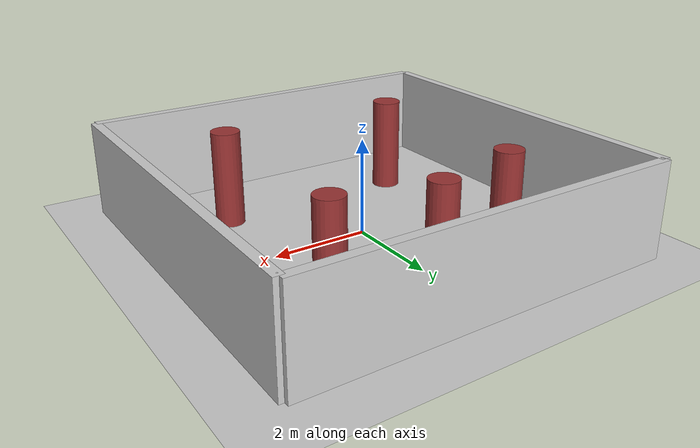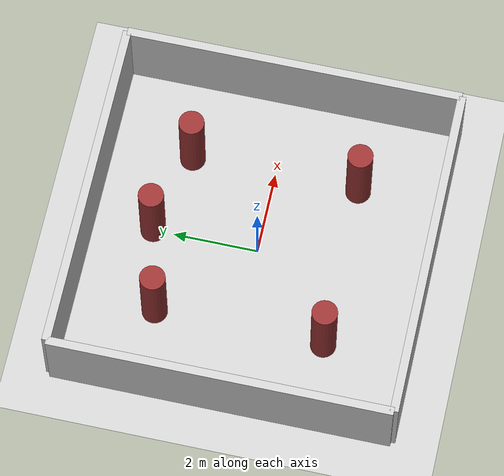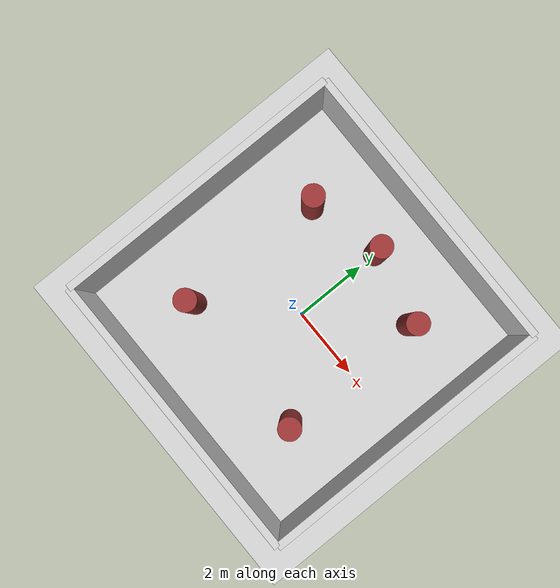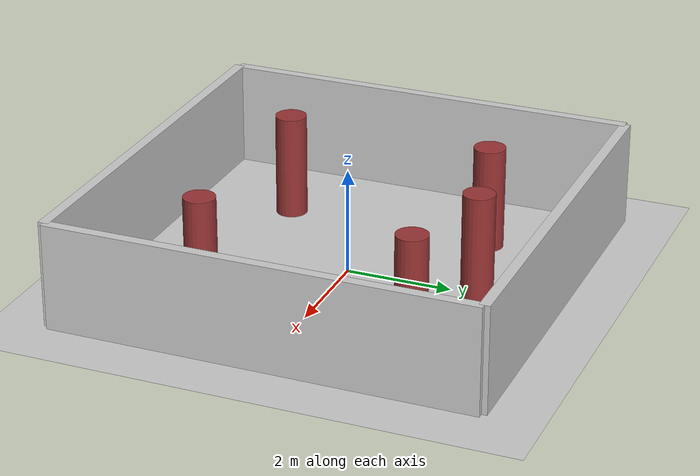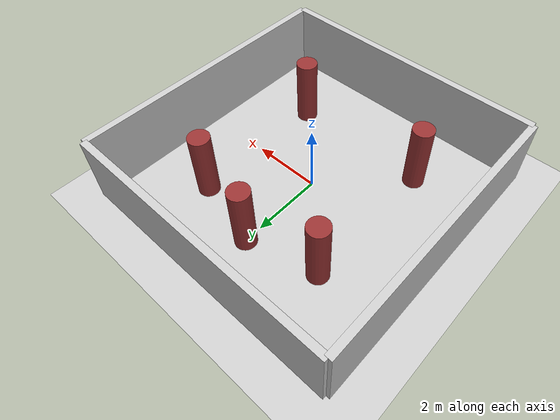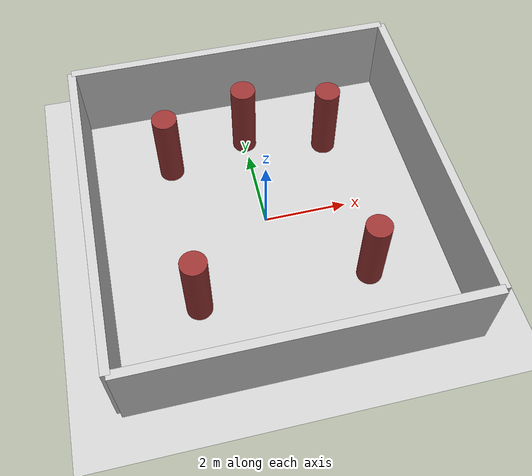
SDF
<?xml version="1.0" ?>
<sdf version="1.6">
  <world name="room_with_pillars">

    <include>
      <uri>model://sun</uri>
    </include>

    <include>
      <uri>model://ground_plane</uri>
    </include>

    <physics type="ode">
      <real_time_update_rate>1000.0</real_time_update_rate>
      <max_step_size>0.001</max_step_size>
    </physics>

    <!-- CUARTO: 8m x 8m, paredes de 0.2m de grosor y 2.0m de altura -->

    <model name="wall_north">
      <static>true</static>
      <pose>0 4 1 0 0 0</pose>
      <link name="link">
        <collision name="collision">
          <geometry><box><size>8 0.2 2</size></box></geometry>
        </collision>
        <visual name="visual">
          <geometry><box><size>8 0.2 2</size></box></geometry>
          <material><ambient>0.8 0.8 0.8 1</ambient></material>
        </visual>
      </link>
    </model>

    <model name="wall_south">
      <static>true</static>
      <pose>0 -4 1 0 0 0</pose>
      <link name="link">
        <collision name="collision">
          <geometry><box><size>8 0.2 2</size></box></geometry>
        </collision>
        <visual name="visual">
          <geometry><box><size>8 0.2 2</size></box></geometry>
          <material><ambient>0.8 0.8 0.8 1</ambient></material>
        </visual>
      </link>
    </model>

    <model name="wall_east">
      <static>true</static>
      <pose>4 0 1 0 0 1.5708</pose>
      <link name="link">
        <collision name="collision">
          <geometry><box><size>8 0.2 2</size></box></geometry>
        </collision>
        <visual name="visual">
          <geometry><box><size>8 0.2 2</size></box></geometry>
          <material><ambient>0.8 0.8 0.8 1</ambient></material>
        </visual>
      </link>
    </model>

    <model name="wall_west">
      <static>true</static>
      <pose>-4 0 1 0 0 1.5708</pose>
      <link name="link">
        <collision name="collision">
          <geometry><box><size>8 0.2 2</size></box></geometry>
        </collision>
        <visual name="visual">
          <geometry><box><size>8 0.2 2</size></box></geometry>
          <material><ambient>0.8 0.8 0.8 1</ambient></material>
        </visual>
      </link>
    </model>

    <!-- PILARES: cilindros de 0.3m de radio y 2m de altura          -->
    <!-- Distribuidos para dar variedad de esquinas/formas al mapa    -->
    <!-- (el origen 0,0 donde spawnea el robot queda libre)           -->

    <model name="pillar_1">
      <static>true</static>
      <pose>2 2 1 0 0 0</pose>
      <link name="link">
        <collision name="collision">
          <geometry><cylinder><radius>0.3</radius><length>2</length></cylinder></geometry>
        </collision>
        <visual name="visual">
          <geometry><cylinder><radius>0.3</radius><length>2</length></cylinder></geometry>
          <material><ambient>0.6 0.2 0.2 1</ambient></material>
        </visual>
      </link>
    </model>

    <model name="pillar_2">
      <static>true</static>
      <pose>-2 2 1 0 0 0</pose>
      <link name="link">
        <collision name="collision">
          <geometry><cylinder><radius>0.3</radius><length>2</length></cylinder></geometry>
        </collision>
        <visual name="visual">
          <geometry><cylinder><radius>0.3</radius><length>2</length></cylinder></geometry>
          <material><ambient>0.6 0.2 0.2 1</ambient></material>
        </visual>
      </link>
    </model>

    <model name="pillar_3">
      <static>true</static>
      <pose>-2 -2 1 0 0 0</pose>
      <link name="link">
        <collision name="collision">
          <geometry><cylinder><radius>0.3</radius><length>2</length></cylinder></geometry>
        </collision>
        <visual name="visual">
          <geometry><cylinder><radius>0.3</radius><length>2</length></cylinder></geometry>
          <material><ambient>0.6 0.2 0.2 1</ambient></material>
        </visual>
      </link>
    </model>

    <model name="pillar_4">
      <static>true</static>
      <pose>2 -2 1 0 0 0</pose>
      <link name="link">
        <collision name="collision">
          <geometry><cylinder><radius>0.3</radius><length>2</length></cylinder></geometry>
        </collision>
        <visual name="visual">
          <geometry><cylinder><radius>0.3</radius><length>2</length></cylinder></geometry>
          <material><ambient>0.6 0.2 0.2 1</ambient></material>
        </visual>
      </link>
    </model>

    <model name="pillar_5">
      <static>true</static>
      <pose>0 2.5 1 0 0 0</pose>
      <link name="link">
        <collision name="collision">
          <geometry><cylinder><radius>0.3</radius><length>2</length></cylinder></geometry>
        </collision>
        <visual name="visual">
          <geometry><cylinder><radius>0.3</radius><length>2</length></cylinder></geometry>
          <material><ambient>0.6 0.2 0.2 1</ambient></material>
        </visual>
      </link>
    </model>

  </world>
</sdf>
